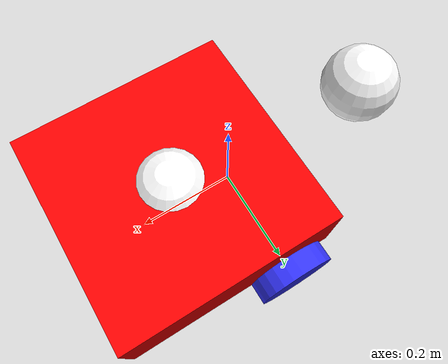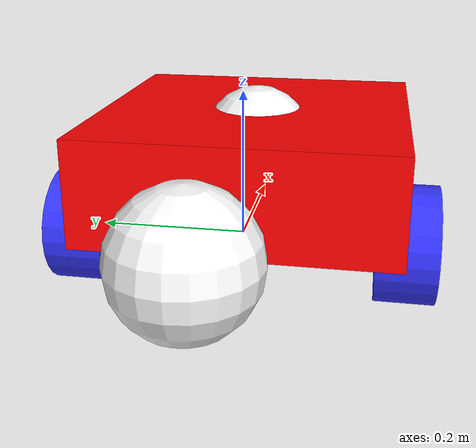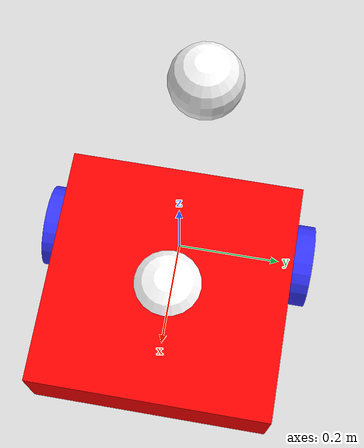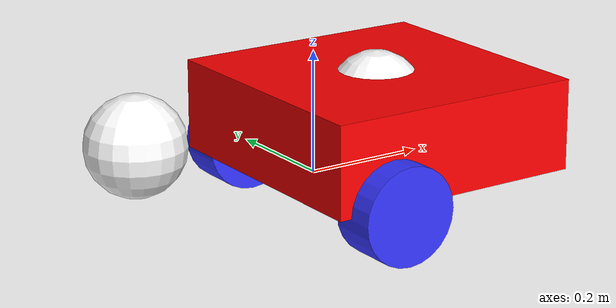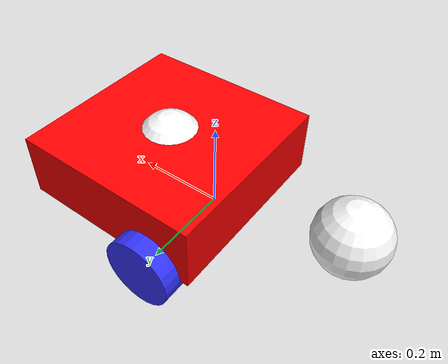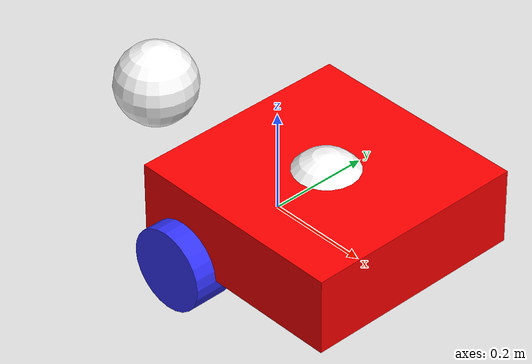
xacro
<?xml version="1.0"?>
<robot xmlns:xacro="http://www.ros.org/wiki/xacro" name ="robot">
    <xacro:include filename="inertial_macros.xacro"/>

    <!-- robot apearence -->
    <material name="white">
        <color rgba="1 1 1 1" />
    </material>

    <material name="orange">
        <color rgba="1 0.3 0.1 1"/>
    </material>

    <material name="blue">
        <color rgba="0.2 0.2 1 1"/>
    </material>

    <material name="black">
        <color rgba="0 0 0 1"/>
    </material>

    <material name="red">
        <color rgba="1 0 0 1"/>
    </material>

 <!-- BASE LINK -->
    <link name="base_link">
    </link>

 <!-- CHASSIS LINK -->
    <joint name="chassis_joint" type="fixed">
        <parent link="base_link"/>
        <child link="chassis"/>
        <origin xyz="-0.1 0 0"/>
    </joint>

    <link name="chassis">
        <visual>
            <origin xyz="0.22 0 0.076"/>
            <geometry>
                <box size="0.44 0.44 0.15"/>
            </geometry>
            <material name="red"/>
        </visual>
        <collision>
            <origin xyz="0.22 0 0.076"/>
            <geometry>
                <box size="0.44 0.44 0.15"/>
            </geometry>
        </collision>
        <xacro:inertial_box mass="0.5" x="0.44" y="0.44" z="0.15">
             <origin xyz="0.22 0 0.076" rpy="0 0 0"/>
        </xacro:inertial_box>
    </link>

    <gazebo reference="chassis">
        <material>Gazebo/Red</material>
    </gazebo>

    <!-- LEFT WHEEL LINK -->
    <joint name="left_wheel_joint" type="continuous">
        <parent link="base_link"/>
        <child link="left_wheel"/>
        <origin xyz="0 0.222 0" rpy="-${pi/2} 0 0" />
        <axis xyz="0 0 1"/>
    </joint>

    <link name="left_wheel">
        <visual>
            <geometry>
                <cylinder radius="0.08" length="0.08"/>
            </geometry>

            <material name= "blue"/>
        </visual>
        <collision>
            <geometry>
                <sphere radius="0.08"/>
            </geometry>
        </collision>
        <xacro:inertial_cylinder mass="0.1" length="0.08" radius="0.08">
            <origin xyz="0 0 0" rpy="0 0 0"/>
        </xacro:inertial_cylinder>
    </link>

    <gazebo reference="left_wheel">
        <material>Gazebo/Blue</material>
    </gazebo>

    <!-- RIGHT WHEEL LINK -->

    <joint name="right_wheel_joint" type="continuous">
        <parent link="base_link"/>
        <child link="right_wheel"/>
        <origin xyz="0 -0.222 0" rpy="${pi/2} 0 0" />
        <axis xyz="0 0 -1"/>
    </joint>

    <link name="right_wheel">
        <visual>
            <geometry>
                <cylinder radius="0.08" length="0.08"/>
            </geometry>
            <material name="blue"/>
        </visual>
        <collision>
            <geometry>
                <sphere radius="0.08"/>
            </geometry>
        </collision>
        <xacro:inertial_cylinder mass="0.1" length="0.08" radius="0.08">
            <origin xyz="0 0 0" rpy="0 0 0"/>
        </xacro:inertial_cylinder>
    </link>

    <gazebo reference="right_wheel">
        <material>Gazebo/Blue</material>
    </gazebo>

    <!-- CASTER WHEEL 1 LINK -->

    <joint name="caster_wheel_joint_1" type="fixed">
        <parent link="chassis"/>
        <child link="caster_wheel_1"/>
        <origin xyz="0.22225 0 0.1016"/>
    </joint>

    <link name="caster_wheel_1">
        <visual>
            <geometry>
                <sphere radius="0.08"/>
            </geometry>
            <material name="white"/>
        </visual>
        <collision>
            <geometry>
                <sphere radius="0.08"/>
            </geometry>
        </collision>
            <xacro:inertial_sphere mass="0.01" radius="0.08">
            <origin xyz="0 0 0" rpy="0 0 0"/>
        </xacro:inertial_sphere>
    </link>

    <gazebo reference="caster_wheel_1">
        <material>Gazebo/White</material>
        <mu1 value="0.001"/>
        <mu2 value="0.001"/>
    </gazebo>

    <!-- CASTER WHEEL 2 LINK -->

    <joint name="caster_wheel_joint_2" type="fixed">
        <parent link="chassis"/>
        <child link="caster_wheel_2"/>
        <origin xyz="-0.22175 0 0.1016"/>
    </joint>

    <link name="caster_wheel_2">
        <visual>
            <geometry>
                <sphere radius="0.08"/>
            </geometry>
            <material name="white"/>
        </visual>
        <collision>
            <geometry>
                <sphere radius="0.08"/>
            </geometry>
        </collision>
            <xacro:inertial_sphere mass="0.01" radius="0.08">
            <origin xyz="0 0 0" rpy="0 0 0"/>
        </xacro:inertial_sphere>
    </link>

    <gazebo reference="caster_wheel_2">
        <material>Gazebo/White</material>
        <mu1 value="0.001"/>
        <mu2 value="0.001"/>
    </gazebo>

</robot>
